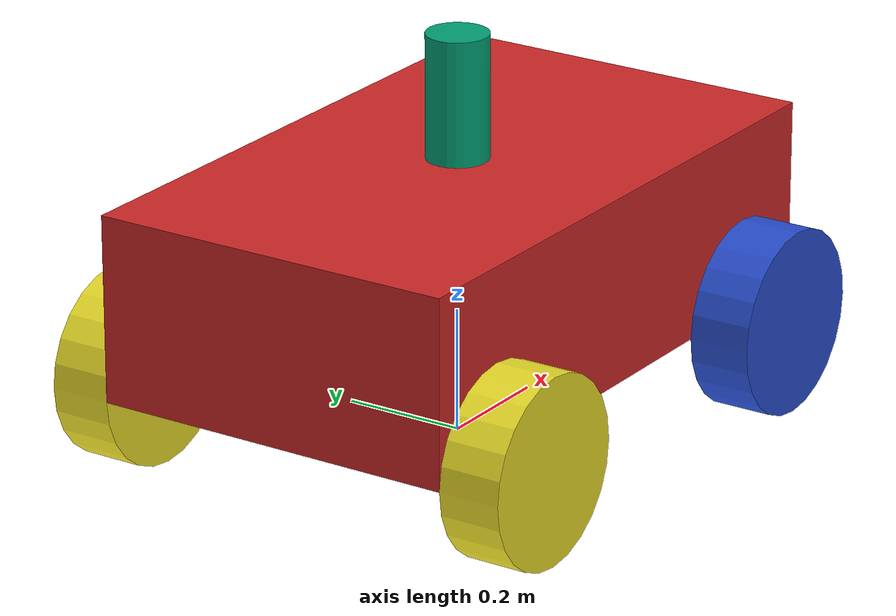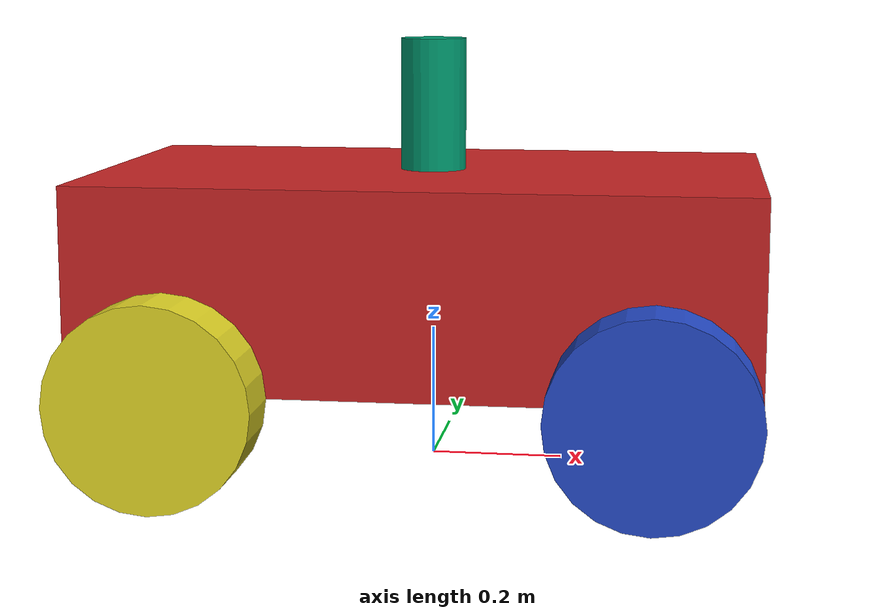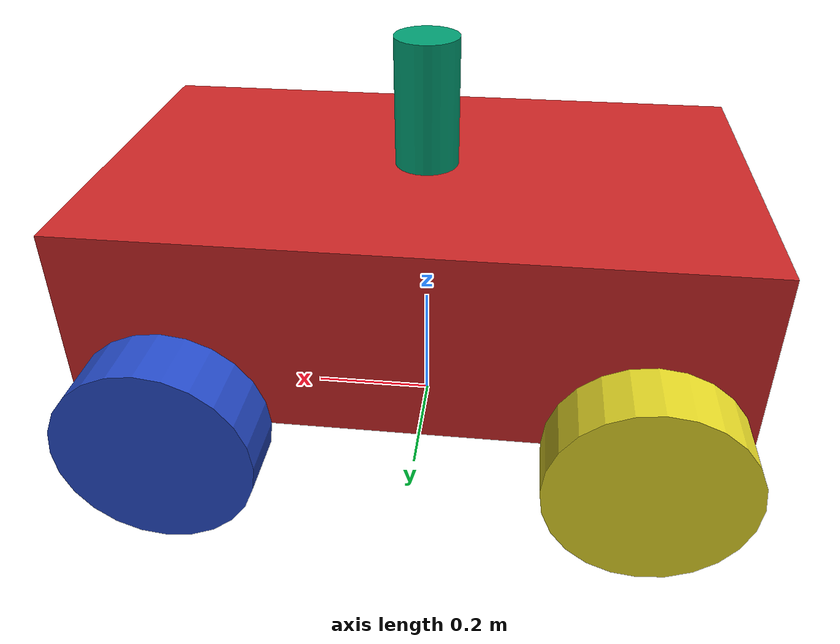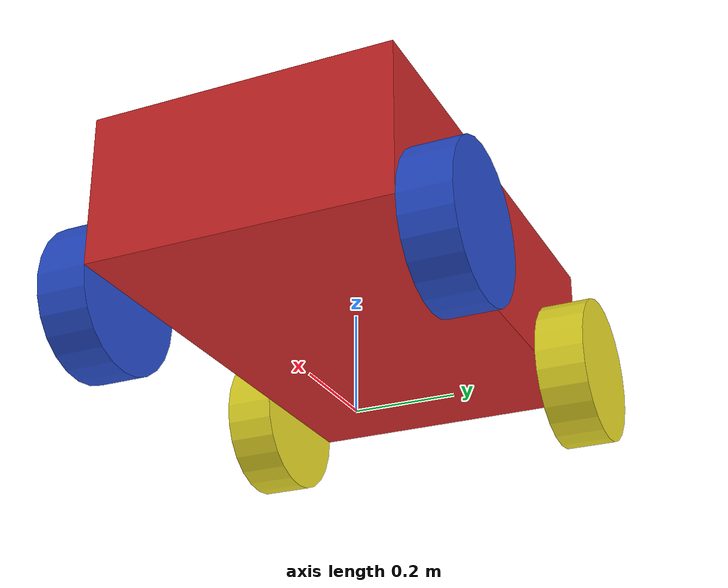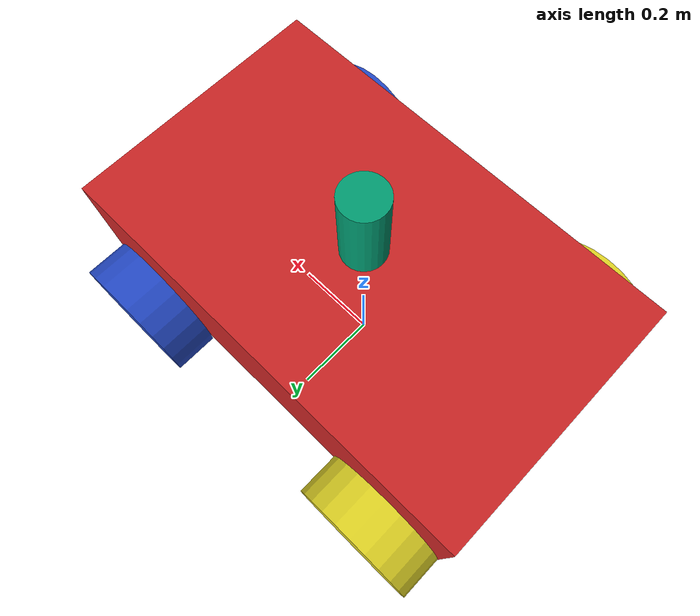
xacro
<?xml version="1.0"?>
<robot name="edge_robot" xmlns:xacro="https://www.ros.org/wiki/xacro">

    <xacro:property name="pi_const" value="3.14159265" />

    <xacro:property name="length" value="1.0"/>
    <xacro:property name="height" value="0.3"/>
    <xacro:property name="breadth" value="0.6"/>
    <xacro:property name="radius" value="0.15"/>
    <xacro:property name="d" value="0.1"/>

    <xacro:property name="body_z" value="${radius + height/2}"/>
    <xacro:property name="body_top_z" value="${radius + height}"/>
    <xacro:property name="wheel_x" value="${length/2 - radius}"/>
    <xacro:property name="wheel_y" value="${breadth/2 + d/2}"/>

    <xacro:property name="density_body" value="2710.0"/>
    <xacro:property name="density_wheel" value="2710.0"/>

    <xacro:property name="m_body"  value="${density_body*length*breadth*height}"/>
    <xacro:property name="m_wheel" value="${density_wheel * pi_const * radius * radius * d}"/>

    <xacro:property name="Ix_box" value="${(1.0/12.0)*m_body*(height*height + breadth*breadth)}"/>
    <xacro:property name="Iy_box" value="${(1.0/12.0)*m_body*(length*length + height*height)}" />
    <xacro:property name="Iz_box" value="${(1.0/12.0)*m_body*(length*length + breadth*breadth)}"/>

    <xacro:property name="Iz_wheel" value="${0.5*m_wheel*radius*radius}"/>
    <xacro:property name="I_wheel"  value="${(1.0/12.0)*m_wheel*(3.0*radius*radius + d*d)}"/>

    <xacro:property name="m_lidar"    value="0.5"/>
    <xacro:property name="Iz_lidar"   value="${0.5*m_lidar*0.1*0.1}"/>
    <xacro:property name="Ixy_lidar"  value="${(1.0/12.0)*m_lidar*(3.0*0.1*0.1 + 0.2*0.2)}"/>

    <xacro:macro name="inertia_body">
        <inertial>
            <origin xyz="0 0 ${height/2}" rpy="0 0 0"/>
            <mass value="${m_body}"/>
            <inertia ixx="${Ix_box}" ixy="0.0" ixz="0.0"
                     iyy="${Iy_box}" iyz="0.0"
                     izz="${Iz_box}"/>
        </inertial>
    </xacro:macro>

    <xacro:macro name="inertia_wheel">
        <inertial>
            <origin xyz="0 0 0" rpy="0 0 0"/>
            <mass value="${m_wheel}"/>
            <inertia ixx="${I_wheel}"  ixy="0.0" ixz="0.0"
                     iyy="${Iz_wheel}" iyz="0.0"
                     izz="${I_wheel}"/>
        </inertial>
    </xacro:macro>

    <xacro:macro name="inertia_lidar">
        <inertial>
            <origin xyz="0 0 0.05" rpy="0 0 0"/>
            <mass value="${m_lidar}"/>
            <inertia ixx="${Ixy_lidar}" ixy="0.0" ixz="0.0"
                     iyy="${Ixy_lidar}" iyz="0.0"
                     izz="${Iz_lidar}"/>
        </inertial>
    </xacro:macro>

    <link name="base_footprint"/>

    <joint name="base_link_joint" type="fixed">
        <origin xyz="0 0 ${radius}" rpy="0 0 0"/>
        <parent link="base_footprint"/>
        <child  link="base_link"/>
    </joint>

    <link name="base_link">
        <visual>
            <origin xyz="0 0 ${height/2}" rpy="0 0 0"/>
            <geometry>
                <box size="${length} ${breadth} ${height}"/>
            </geometry>
        </visual>
        <collision>
            <origin xyz="0 0 ${height/2}" rpy="0 0 0"/>
            <geometry>
                <box size="${length} ${breadth} ${height}"/>
            </geometry>
        </collision>
        <xacro:inertia_body/>
    </link>

    <gazebo reference="base_link">
        <mu1>0.2</mu1>
        <mu2>0.2</mu2>
        <material>Gazebo/Red</material>
    </gazebo>

    <link name="lidar_link">
        <visual>
            <origin xyz="0 0 0.1" rpy="0 0 0"/>
            <geometry>
                <cylinder radius="0.05" length="0.2"/>
            </geometry>
        </visual>
        <collision>
            <origin xyz="0 0 0.1" rpy="0 0 0"/>
            <geometry>
                <cylinder radius="0.05" length="0.2"/>
            </geometry>
        </collision>
        <xacro:inertia_lidar/>
    </link>

    <joint name="lidar_joint" type="fixed">
        <origin xyz="0 0 ${height}" rpy="0 0 0"/>
        <parent link="base_link"/>
        <child  link="lidar_link"/>
    </joint>

    <gazebo reference="lidar_link">
        <sensor name="lidar_3d" type="gpu_lidar">
            <topic>scan_3d</topic>
            <update_rate>10</update_rate>
            <gz_frame_id>lidar_link</gz_frame_id>
            <lidar>
                <scan>
                    <horizontal>
                        <samples>360</samples>
                        <resolution>1</resolution>
                        <min_angle>-3.14159265</min_angle>
                        <max_angle>3.14159265</max_angle>
                    </horizontal>
                    <vertical>
                        <samples>16</samples>
                        <resolution>1</resolution>
                        <min_angle>-0.26179939</min_angle>
                        <max_angle>0.26179939</max_angle>
                    </vertical>
                </scan>
                <range>
                    <min>0.1</min>
                    <max>100.0</max>
                    <resolution>0.001</resolution>
                </range>
                <noise>
                    <type>gaussian</type>
                    <mean>0.0</mean>
                    <stddev>0.01</stddev>
                </noise>
            </lidar>
            <always_on>true</always_on>
            <visualize>false</visualize>
        </sensor>
    </gazebo>

    <link name="left_wheel_link">
        <visual>
            <origin xyz="0 0 0" rpy="1.5707963 0 0"/>
            <geometry>
                <cylinder radius="${radius}" length="${d}"/>
            </geometry>
        </visual>
        <collision>
            <origin xyz="0 0 0" rpy="1.5707963 0 0"/>
            <geometry>
                <cylinder radius="${radius}" length="${d}"/>
            </geometry>
        </collision>
        <xacro:inertia_wheel/>
    </link>

    <joint name="left_wheel_joint" type="continuous">
        <parent link="base_link"/>
        <child  link="left_wheel_link"/>
        <origin xyz="${-wheel_x} ${-wheel_y} 0" rpy="0 0 0"/>
        <axis xyz="0 1 0"/>
        <limit effort="50000" velocity="10"/>
        <dynamics damping="1.0" friction="1.0"/>
    </joint>

    <gazebo reference="left_wheel_link">
        <mu1>0.8</mu1>
        <mu2>0.8</mu2>
        <material>Gazebo/Yellow</material>
    </gazebo>

    <link name="right_wheel_link">
        <visual>
            <origin xyz="0 0 0" rpy="1.5707963 0 0"/>
            <geometry>
                <cylinder radius="${radius}" length="${d}"/>
            </geometry>
        </visual>
        <collision>
            <origin xyz="0 0 0" rpy="1.5707963 0 0"/>
            <geometry>
                <cylinder radius="${radius}" length="${d}"/>
            </geometry>
        </collision>
        <xacro:inertia_wheel/>
    </link>

    <joint name="right_wheel_joint" type="continuous">
        <parent link="base_link"/>
        <child  link="right_wheel_link"/>
        <origin xyz="${-wheel_x} ${wheel_y} 0" rpy="0 0 0"/>
        <axis xyz="0 1 0"/>
        <limit effort="50000" velocity="10"/>
        <dynamics damping="1.0" friction="1.0"/>
    </joint>

    <gazebo reference="right_wheel_link">
        <mu1>0.8</mu1>
        <mu2>0.8</mu2>
        <material>Gazebo/Yellow</material>
    </gazebo>

    <link name="caster1_link">
        <visual>
            <origin xyz="0 0 0" rpy="1.5707963 0 0"/>
            <geometry>
                <cylinder radius="${radius}" length="${d}"/>
            </geometry>
        </visual>
        <collision>
            <origin xyz="0 0 0" rpy="1.5707963 0 0"/>
            <geometry>
                <cylinder radius="${radius}" length="${d}"/>
            </geometry>
        </collision>
        <xacro:inertia_wheel/>
    </link>

    <joint name="caster1_joint" type="fixed">
        <parent link="base_link"/>
        <child  link="caster1_link"/>
        <origin xyz="${wheel_x} ${-wheel_y} 0" rpy="0 0 0"/>
    </joint>

    <gazebo reference="caster1_link">
        <mu1>0.000002</mu1>
        <mu2>0.000002</mu2>
        <material>Gazebo/Blue</material>
    </gazebo>

    <link name="caster2_link">
        <visual>
            <origin xyz="0 0 0" rpy="1.5707963 0 0"/>
            <geometry>
                <cylinder radius="${radius}" length="${d}"/>
            </geometry>
        </visual>
        <collision>
            <origin xyz="0 0 0" rpy="1.5707963 0 0"/>
            <geometry>
                <cylinder radius="${radius}" length="${d}"/>
            </geometry>
        </collision>
        <xacro:inertia_wheel/>
    </link>

    <joint name="caster2_joint" type="fixed">
        <parent link="base_link"/>
        <child  link="caster2_link"/>
        <origin xyz="${wheel_x} ${wheel_y} 0" rpy="0 0 0"/>
    </joint>

    <gazebo reference="caster2_link">
        <mu1>0.000002</mu1>
        <mu2>0.000002</mu2>
        <material>Gazebo/Blue</material>
    </gazebo>

    <gazebo>
        <plugin filename="gz-sim-diff-drive-system"
                name="gz::sim::systems::DiffDrive">
            <left_joint>left_wheel_joint</left_joint>
            <right_joint>right_wheel_joint</right_joint>
            <wheel_separation>${2*wheel_y}</wheel_separation>
            <wheel_radius>${radius}</wheel_radius>
            <odom_publish_frequency>20</odom_publish_frequency>
            <topic>cmd_vel</topic>
            <odom_topic>odom</odom_topic>
            <tf_topic>tf</tf_topic>
            <frame_id>odom</frame_id>
            <child_frame_id>base_footprint</child_frame_id>
            <max_linear_acceleration>1.0</max_linear_acceleration>
        </plugin>
    </gazebo>

    <gazebo>
        <plugin filename="gz-sim-joint-state-publisher-system"
                name="gz::sim::systems::JointStatePublisher">
            <joint_name>left_wheel_joint</joint_name>
            <joint_name>right_wheel_joint</joint_name>
            <topic>joint_states</topic>
        </plugin>
    </gazebo>

</robot>
